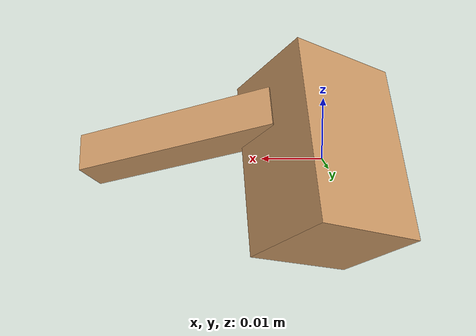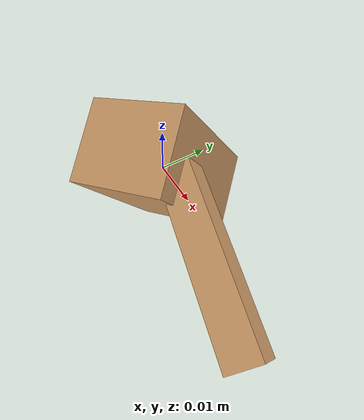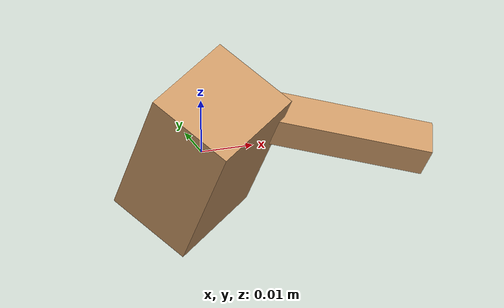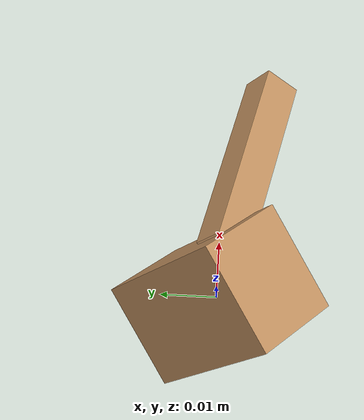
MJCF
<mujoco>
  <compiler coordinate="local" angle="radian"/>

  <default>
    <geom rgba=".8 .6 .4 1"/>
  </default>

  <asset>
    <texture type="skybox" builtin="gradient" rgb1="1 1 1" rgb2=".6 .8 1" width="256" height="256"/>
  </asset>

  <worldbody>
    <geom name="floor" pos="0 0 -0.5" size="3 3 0.125" type="plane" condim="3" rgba="1 1 1 1"></geom>
    <light pos="0 1 1" dir="0 -1 -1" diffuse="1 1 1"/>
    <body pos="0 0 0" euler="90.012 -180 30" >
	<geom type="box" size="0.0155 0.0085 0.01"/>
	<body pos="-0.007105 -0.015901 0.017895" euler="-109 0 0">
	    <geom type="box" size="0.00345 0.00345 0.0179"/>
	    <joint type="hinge" pos="0 0 0.0179" axis="0 1 0"/>
	</body>
	</body>
  </worldbody>

</mujoco>
